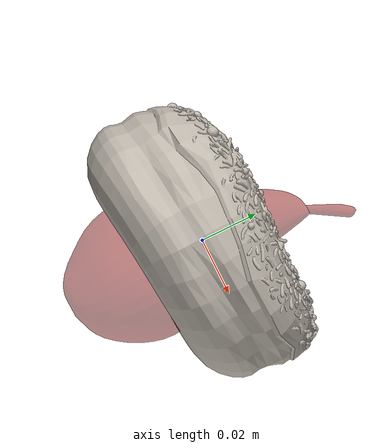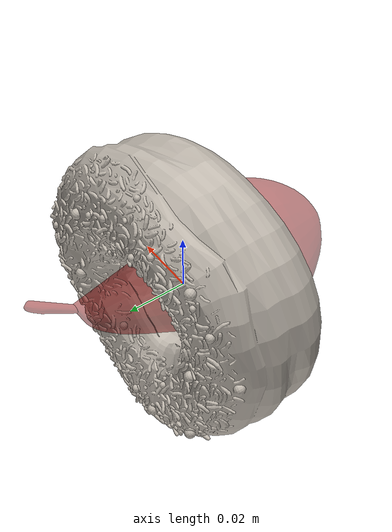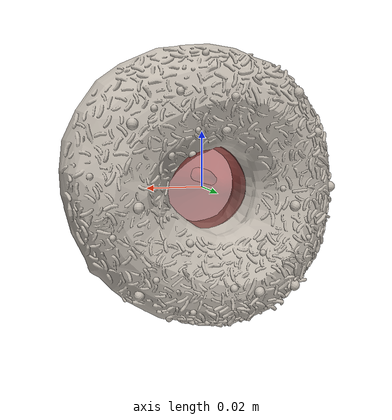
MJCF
<mujoco model="pear_7">
  <asset>
    <mesh file="visual/model_normalized_0.obj" name="model_normalized_0_vis" scale="0.1 0.1 0.1" refquat="0.4999999999999999 0.4999999999999999 0.5 0.5" />
    <texture type="2d" name="image0" file="visual/image0.png" />
    <material name="material_0.094" texture="image0" specular="0.5" shininess="0.15999998099999999" />
    <mesh file="collision/collision_mesh_collision_0.obj" name="pear_collision_mesh_0" scale="0.1 0.1 0.1" refquat="0.4999999999999999 0.4999999999999999 0.5 0.5" />
    <mesh file="collision/collision_mesh_collision_1.obj" name="pear_collision_mesh_1" scale="0.1 0.1 0.1" refquat="0.4999999999999999 0.4999999999999999 0.5 0.5" />
    <mesh file="collision/collision_mesh_collision_2.obj" name="pear_collision_mesh_2" scale="0.1 0.1 0.1" refquat="0.4999999999999999 0.4999999999999999 0.5 0.5" />
  </asset>
  <default>
    <default class="region">
      <geom group="1" conaffinity="0" contype="0" rgba="0 1 0 0" />
    </default>
    <default class="collision">
      <geom group="0" rgba="0.5 0 0 0.5" density="1000.0" />
    </default>
  </default>
  <worldbody>
    <body>
      <body name="object">
        <geom solimp="0.998 0.998 0.001" solref="0.001 1" density="100" friction="0.95 0.3 0.1" type="mesh" mesh="model_normalized_0_vis" conaffinity="0" contype="0" group="1" material="material_0.094" />
        <geom class="region" name="reg_bbox" type="box" pos="-0.00000 0.00000 -0.00000" size="0.02434 0.05000 0.02399" />
        <geom mesh="pear_collision_mesh_0" type="mesh" class="collision" />
        <geom mesh="pear_collision_mesh_1" type="mesh" class="collision" />
        <geom mesh="pear_collision_mesh_2" type="mesh" class="collision" />
      </body>
    </body>
  </worldbody>
</mujoco>
